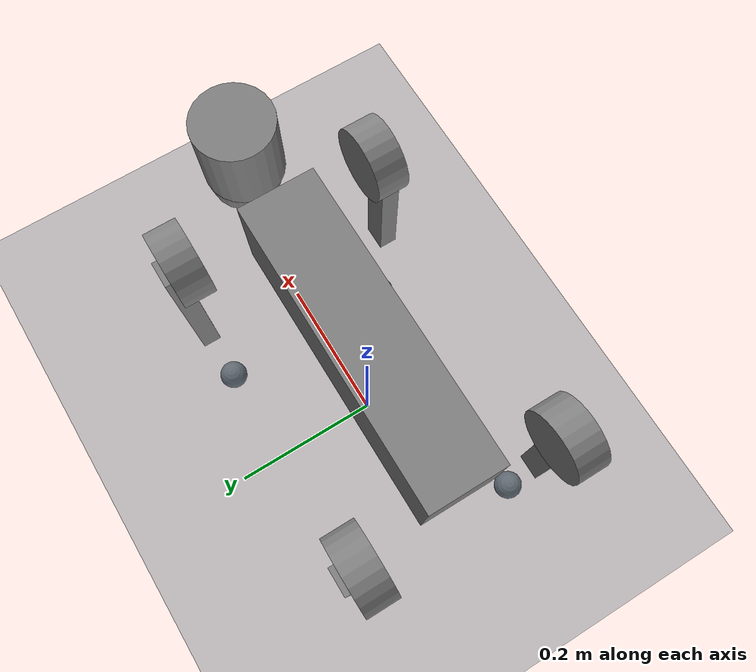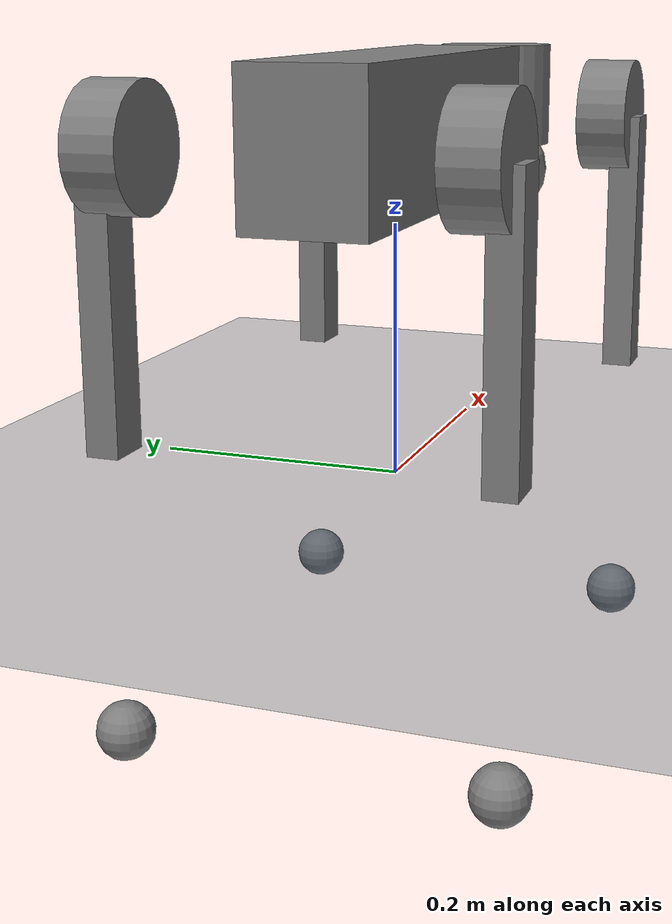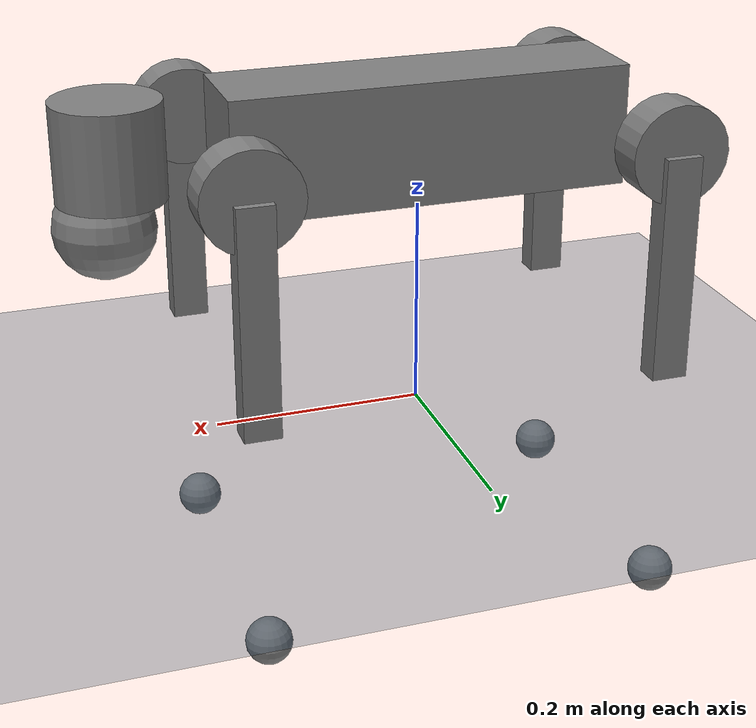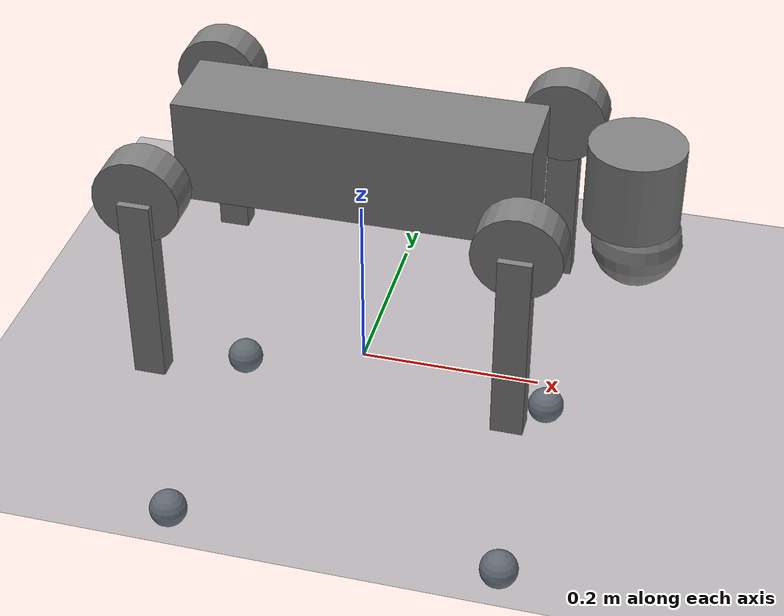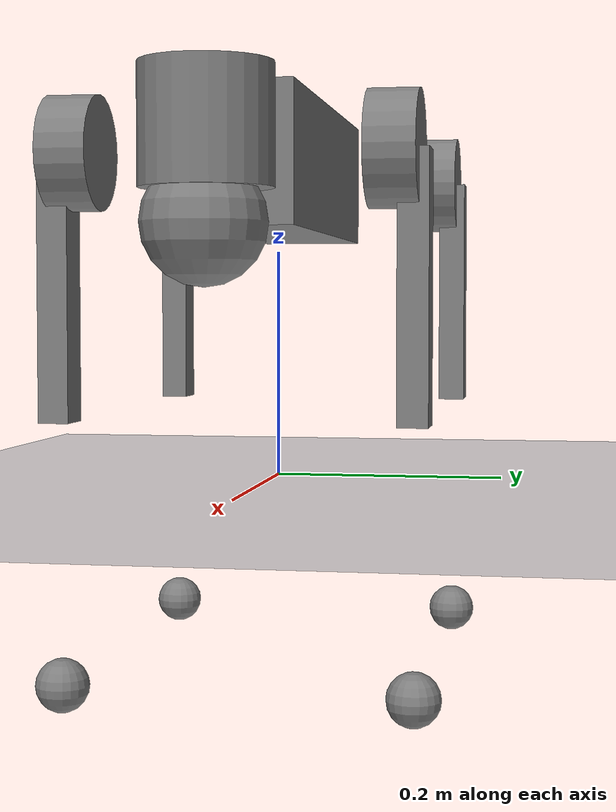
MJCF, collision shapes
<mujoco model="go2 scene">
  <!-- 平地场景: 与 scene.xml 相同, 但去掉 x=1.2~3.4 那串台阶/障碍 box, 只留平面地板.
       做什么用: 排除地形干扰调平衡/步态; 撞台阶、上坡的表现请用 scene.xml. -->
  <include file="go2.xml"/>

  <statistic center="0 0 0.1" extent="0.8"/>
  <!-- 默认重力 0 0 -9.81。要零重力调试 (漂浮/无重力下的纯运动学验证) 就放开下面这行 -->
  <visual>
    <headlight diffuse="0.6 0.6 0.6" ambient="0.3 0.3 0.3" specular="0 0 0"/>
    <rgba haze="0.15 0.25 0.35 1"/>
    <global azimuth="-130" elevation="-20"/>
  </visual>

  <asset>
    <texture type="skybox" builtin="gradient" rgb1="0.3 0.5 0.7" rgb2="0 0 0" width="512" height="3072"/>
    <texture type="2d" name="groundplane" builtin="checker" mark="edge" rgb1="0.2 0.3 0.4" rgb2="0.1 0.2 0.3"
      markrgb="0.8 0.8 0.8" width="300" height="300"/>
    <material name="groundplane" texture="groundplane" texuniform="true" texrepeat="5 5" reflectance="0.2"/>
  </asset>

  <worldbody>
    <light pos="0 0 1.5" dir="0 0 -1" directional="true"/>
    <geom name="floor" size="0 0 0.05" type="plane" material="groundplane"/>
  </worldbody>
</mujoco>

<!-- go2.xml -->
<mujoco model="go2">
  <compiler angle="radian" meshdir="assets" autolimits="true" />
  <option cone="elliptic" impratio="100" />

  <default>
    <default class="go2">
      <geom friction="0.4" margin="0.001" condim="1"/>
      <joint axis="0 1 0" damping="0.1" armature="0.01" frictionloss="0.2"/>

      <position kp="100" kv="10" forcerange="-23.7 23.7"/>

      <default class="hip">
        <default class="front_hip">
          <joint range="-1.5708 3.4907"/>
        </default>
        <default class="back_hip">
          <joint range="-0.5236 4.5379"/>
        </default>
      </default>

      <default class="knee">
        <joint range="-2.7227 -0.83776"/>
        <position kp="80" kv="12" forcerange="-45.43 45.43"/>
      </default>

      <default class="visual">
        <geom type="mesh" contype="0" conaffinity="0" group="2"/>
      </default>

      <default class="collision">
        <geom group="3"/>
        <default class="foot">
          <geom size="0.022" pos="-0.002 0 -0.213" priority="1" condim="6"
            friction="0.4 0.02 0.01"/>
        </default>
      </default>

      </default>
  </default>

  <asset>
    <material name="metal" rgba=".9 .95 .95 1" />
    <material name="black" rgba="0 0 0 1" />
    <material name="white" rgba="1 1 1 1" />
    <material name="gray" rgba="0.671705 0.692426 0.774270 1" />

    <mesh file="base_0.stl" />
    <mesh file="base_1.stl" />
    <mesh file="base_2.stl" />
    <mesh file="base_3.stl" />
    <mesh file="base_4.stl" />
    <mesh file="hip_0.stl" />
    <mesh file="hip_1.stl" />
    <mesh file="thigh_0.stl" />
    <mesh file="thigh_1.stl" />
    <mesh file="thigh_mirror_0.stl" />
    <mesh file="thigh_mirror_1.stl" />
    <mesh file="calf_0.stl" />
    <mesh file="calf_1.stl" />
    <mesh file="calf_mirror_0.stl" />
    <mesh file="calf_mirror_1.stl" />
    <mesh file="foot.stl" />
  </asset>

  <worldbody>
    <body name="base_link" pos="0 0 0.272" childclass="go2">
      <inertial pos="0.021112 0 -0.005366" quat="-0.000543471 0.713435 -0.00173769 0.700719"
        mass="6.921"
        diaginertia="0.107027 0.0980771 0.0244531" />
      <freejoint />
      <geom mesh="base_0" material="black" class="visual" />
      <geom mesh="base_1" material="black" class="visual" />
      <geom mesh="base_2" material="black" class="visual" />
      <geom mesh="base_3" material="white" class="visual" />
      <geom mesh="base_4" material="gray" class="visual" />
      <geom size="0.1881 0.04675 0.057" type="box" class="collision" />
      <geom size="0.05 0.045" pos="0.285 0 0.01" type="cylinder" class="collision" />
      <geom size="0.047" pos="0.293 0 -0.06" class="collision" />
      <site name="imu" pos="-0.02557 0 0.04232" rgba="1 0 0 0.5" group="1"/>

      <!-- 左前腿 FL -->
      <body name="FL_hip" pos="0.1934 0.0465 0">
        <geom mesh="hip_0" material="metal" class="visual" />
        <geom mesh="hip_1" material="gray" class="visual" />
        <geom size="0.046 0.02" pos="0 0.08 0" quat="1 1 0 0" type="cylinder" class="collision" />
        <body name="FL_thigh" pos="0 0.0955 0">
          <joint name="FL_thigh_joint" class="front_hip" />
          <geom mesh="thigh_0" material="metal" class="visual" />
          <geom size="0.1065 0.01225 0.017" pos="0 0 -0.1065" quat="0.707107 0 0.707107 0" type="box" class="collision" />
          <body name="FL_calf" pos="0 0 -0.213">
            <joint name="FL_calf_joint" class="knee" />
            <geom mesh="calf_0" material="gray" class="visual" />
            <geom pos="0 0 -0.213" mesh="foot" class="visual" material="black" />
            <geom name="FL" class="foot" />

            <!-- 添加足端碰撞site供touch使用 -->
            <site name="FL_touch_site" pos="0 0 -0.213" size="0.03" rgba="1 0 0 0"/>
          </body>
        </body>
      </body>

      <!-- 右前腿 FR -->
      <body name="FR_hip" pos="0.1934 -0.0465 0">
        <geom mesh="hip_0" material="metal" class="visual" quat="4.63268e-05 1 0 0" />
        <geom mesh="hip_1" material="gray" class="visual" quat="4.63268e-05 1 0 0" />
        <geom size="0.046 0.02" pos="0 -0.08 0" quat="0.707107 0.707107 0 0" type="cylinder" class="collision" />
        <body name="FR_thigh" pos="0 -0.0955 0">
          <joint name="FR_thigh_joint" class="front_hip" />
          <geom mesh="thigh_mirror_0" material="metal" class="visual" />
          <geom size="0.1065 0.01225 0.017" pos="0 0 -0.1065" quat="0.707107 0 0.707107 0" type="box" class="collision" />
          <body name="FR_calf" pos="0 0 -0.213">
            <joint name="FR_calf_joint" class="knee" />
            <geom mesh="calf_mirror_0" material="gray" class="visual" />
            <geom pos="0 0 -0.213" mesh="foot" class="visual" material="black" />
            <geom name="FR" class="foot" />

            <site name="FR_touch_site" pos="0 0 -0.213" size="0.03" rgba="1 0 0 0"/>
          </body>
        </body>
      </body>

      <!-- 左后腿 RL -->
      <body name="RL_hip" pos="-0.1934 0.0465 0">
        <geom mesh="hip_0" material="metal" class="visual" quat="4.63268e-05 0 1 0" />
        <geom mesh="hip_1" material="gray" class="visual" quat="4.63268e-05 0 1 0" />
        <geom size="0.046 0.02" pos="0 0.08 0" quat="0.707107 0.707107 0 0" type="cylinder" class="collision" />
        <body name="RL_thigh" pos="0 0.0955 0">
          <joint name="RL_thigh_joint" class="back_hip" />
          <geom mesh="thigh_0" material="metal" class="visual" />
          <geom size="0.1065 0.01225 0.017" pos="0 0 -0.1065" quat="0.707107 0 0.707107 0" type="box" class="collision" />
          <body name="RL_calf" pos="0 0 -0.213">
            <joint name="RL_calf_joint" class="knee" />
            <geom mesh="calf_0" material="gray" class="visual" />
            <geom pos="0 0 -0.213" mesh="foot" class="visual" material="black" />
            <geom name="RL" class="foot" />

            <site name="RL_touch_site" pos="0 0 -0.213" size="0.03" rgba="1 0 0 0"/>
          </body>
        </body>
      </body>

      <!-- 右后腿 RR -->
      <body name="RR_hip" pos="-0.1934 -0.0465 0">
        <geom mesh="hip_0" material="metal" class="visual" quat="2.14617e-09 4.63268e-05 4.63268e-05 -1" />
        <geom mesh="hip_1" material="gray" class="visual" quat="2.14617e-09 4.63268e-05 4.63268e-05 -1" />
        <geom size="0.046 0.02" pos="0 -0.08 0" quat="0.707107 0.707107 0 0" type="cylinder" class="collision" />
        <body name="RR_thigh" pos="0 -0.0955 0">
          <joint name="RR_thigh_joint" class="back_hip" />
          <geom mesh="thigh_mirror_0" material="metal" class="visual" />
          <geom size="0.1065 0.01225 0.017" pos="0 0 -0.1065" quat="0.707107 0 0.707107 0" type="box" class="collision" />
          <body name="RR_calf" pos="0 0 -0.213">
            <joint name="RR_calf_joint" class="knee" />
            <geom mesh="calf_mirror_0" material="gray" class="visual" />
            <geom pos="0 0 -0.213" mesh="foot" class="visual" material="black" />
            <geom name="RR" class="foot" />

            <site name="RR_touch_site" pos="0 0 -0.213" size="0.03" rgba="1 0 0 0"/>
          </body>
        </body>
      </body>
    </body>
  </worldbody>

  <actuator>
    <motor class="knee" name="FL_calf" joint="FL_calf_joint" ctrlrange="-100 100"/>
    <motor class="hip" name="FL_thigh" joint="FL_thigh_joint" ctrlrange="-100 100"/>
    <motor class="knee" name="RR_calf" joint="RR_calf_joint" ctrlrange="-100 100"/>
    <motor class="hip" name="RR_thigh" joint="RR_thigh_joint" ctrlrange="-100 100"/>
    <motor class="knee" name="RL_calf" joint="RL_calf_joint" ctrlrange="-100 100"/>
    <motor class="hip" name="RL_thigh" joint="RL_thigh_joint" ctrlrange="-100 100"/>
    <motor class="knee" name="FR_calf" joint="FR_calf_joint" ctrlrange="-100 100"/>
    <motor class="hip" name="FR_thigh" joint="FR_thigh_joint" ctrlrange="-100 100"/>
  </actuator>

  <sensor>
    <jointpos name="FR_thigh_pos" joint="FR_thigh_joint" />
    <jointpos name="FR_calf_pos" joint="FR_calf_joint" />
    <jointpos name="FL_thigh_pos" joint="FL_thigh_joint" />
    <jointpos name="FL_calf_pos" joint="FL_calf_joint" />
    <jointpos name="RR_thigh_pos" joint="RR_thigh_joint" />
    <jointpos name="RR_calf_pos" joint="RR_calf_joint" />
    <jointpos name="RL_thigh_pos" joint="RL_thigh_joint" />
    <jointpos name="RL_calf_pos" joint="RL_calf_joint" />

    <jointvel name="FR_thigh_vel" joint="FR_thigh_joint" />
    <jointvel name="FR_calf_vel" joint="FR_calf_joint" />
    <jointvel name="FL_thigh_vel" joint="FL_thigh_joint" />
    <jointvel name="FL_calf_vel" joint="FL_calf_joint" />
    <jointvel name="RR_thigh_vel" joint="RR_thigh_joint" />
    <jointvel name="RR_calf_vel" joint="RR_calf_joint" />
    <jointvel name="RL_thigh_vel" joint="RL_thigh_joint" />
    <jointvel name="RL_calf_vel" joint="RL_calf_joint" />

    <touch name="FL_touch" site="FL_touch_site" />
    <touch name="FR_touch" site="FR_touch_site" />
    <touch name="RL_touch" site="RL_touch_site" />
    <touch name="RR_touch" site="RR_touch_site" />

    <framequat name="imu_quat" objtype="site" objname="imu" />
    <gyro name="imu_gyro" site="imu" />
    <accelerometer name="imu_acc" site="imu" />
  </sensor>

    <keyframe>
        <!-- 0.25 站立蹲姿精确解: 腿长 0.426, 0.426·cosθ = 0.25
             → 大腿 +0.94431 rad (膝向后), 小腿 -1.88862 rad (膝后置, Go2 四膝向后)
             机身 z=0.272: 足端球(半径0.022)底刚好贴地, 零穿透起步 -->
        <key name="stand_pose" qpos="0 0 0.272 1 0 0 0 0.94431 -1.88862 0.94431 -1.88862 0.94431 -1.88862 0.94431 -1.88862"
      ctrl="0.94431 -1.88862 0.94431 -1.88862 0.94431 -1.88862 0.94431 -1.88862" />
        <key name="stand_pose_tau"
        qpos="0 0 0.272 1 0 0 0 0.94431 -1.88862 0.94431 -1.88862 0.94431 -1.88862 0.94431 -1.88862"
        ctrl="0 -5.0 0 -5.0 0 -5.0 0 -5.0" />
        <key name="lie_down"
         qpos="0 0 0.1 1 0 0 0 1.5 -2.6 1.5 -2.6 1.5 -2.6 1.5 -2.6"
         ctrl="1.5 -2.6 1.5 -2.6 1.5 -2.6 1.5 -2.6" />
    </keyframe>

</mujoco>
